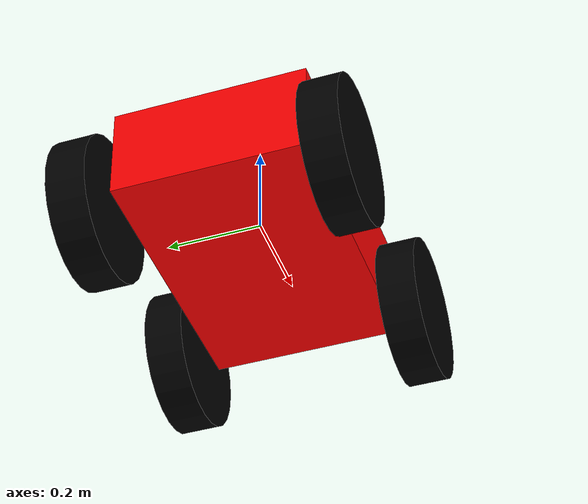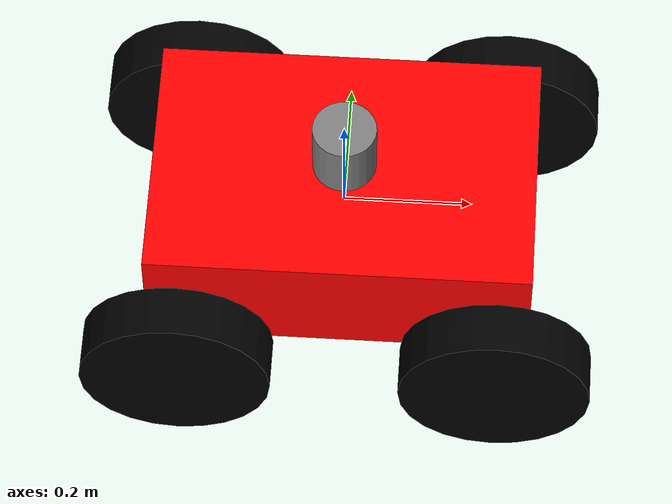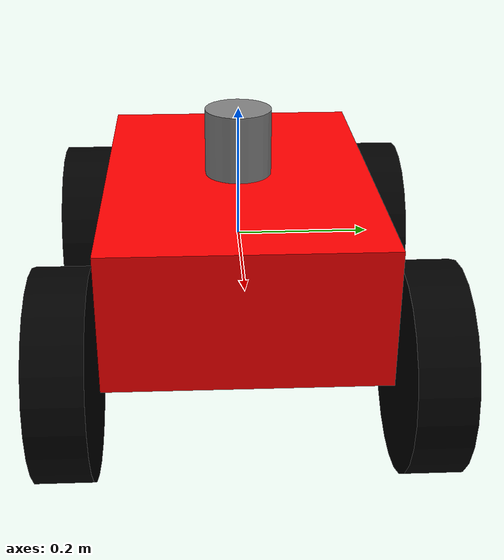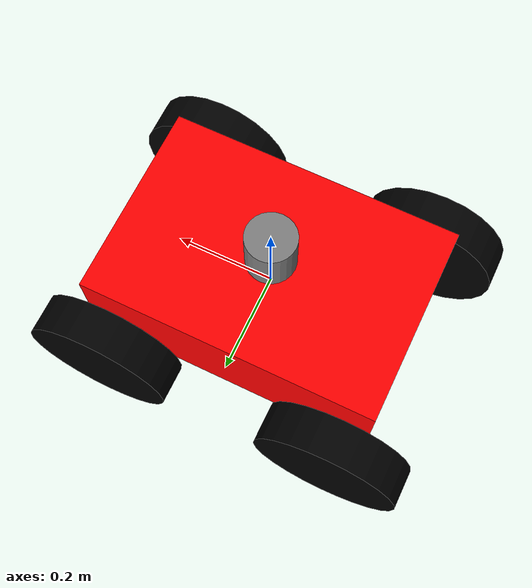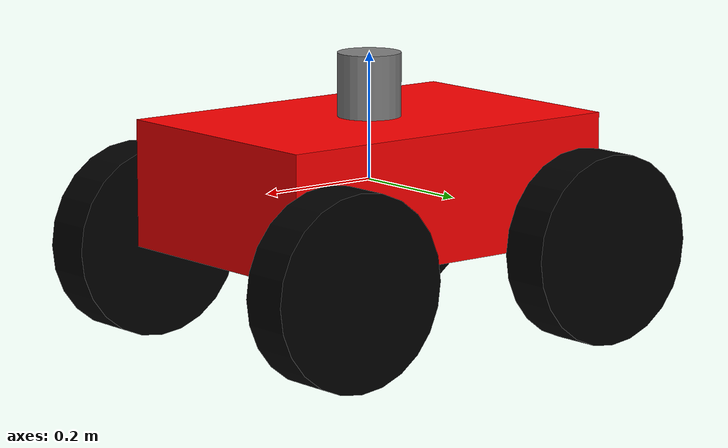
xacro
<?xml version="1.0"?>
<robot xmlns:xacro="http://ros.org/wiki/xacro" name="ae86_bot">

  <!-- ================= BASE LINK ================= -->
  <link name="base_link">
    <visual>
      <geometry>
        <box size="0.6 0.4 0.2"/> <!-- جسم الروبوت -->
      </geometry>
      <material name="red">
        <color rgba="1.0 0.0 0.0 1.0"/> <!-- أحمر كامل -->
      </material>
    </visual>
    <collision>
      <geometry>
        <box size="0.6 0.4 0.2"/>
      </geometry>
    </collision>
    <inertial>
      <mass value="10"/>
      <origin xyz="0 0 0"/>
      <inertia ixx="0.1" iyy="0.1" izz="0.1"
               ixy="0.0" ixz="0.0" iyz="0.0"/>
    </inertial>
  </link>

  <!-- ================= WHEELS ================= -->
  <xacro:macro name="wheel" params="name x y z">
    <link name="${name}">
      <visual>
        <geometry>
          <cylinder radius="0.15" length="0.08"/> <!-- عجلة كبيرة -->
        </geometry>
        <material name="black">
          <color rgba="0.0 0.0 0.0 1.0"/>
        </material>
      </visual>
      <collision>
        <geometry>
          <cylinder radius="0.15" length="0.08"/>
        </geometry>
      </collision>
      <inertial>
        <mass value="2"/>
        <inertia ixx="0.02" iyy="0.02" izz="0.02"
                 ixy="0.0" ixz="0.0" iyz="0.0"/>
      </inertial>
    </link>

    <!-- Joint -->
    <joint name="${name}_joint" type="continuous">
      <parent link="base_link"/>
      <child link="${name}"/>
      <origin xyz="${x} ${y} ${z}" rpy="1.5708 0 0"/> <!-- اتجاه طبيعي -->
      <axis xyz="0 1 0"/> <!-- تدور حوالين Y -->
    </joint>
  </xacro:macro>

  <!-- الأربع عجلات -->
  <xacro:wheel name="wheel_front_left"  x="0.25"  y="0.25"  z="-0.1"/>
  <xacro:wheel name="wheel_front_right" x="0.25"  y="-0.25" z="-0.1"/>
  <xacro:wheel name="wheel_back_left"   x="-0.25" y="0.25"  z="-0.1"/>
  <xacro:wheel name="wheel_back_right"  x="-0.25" y="-0.25" z="-0.1"/>

  <!-- ================= LIDAR ================= -->
  <link name="lidar_link">
    <visual>
      <geometry>
        <cylinder radius="0.05" length="0.1"/>
      </geometry>
      <material name="grey">
        <color rgba="0.5 0.5 0.5 1.0"/> <!-- رمادي فاتح لتمييز الليدار -->
      </material>
    </visual>
  </link>

  <joint name="lidar_joint" type="fixed">
    <parent link="base_link"/>
    <child link="lidar_link"/>
    <origin xyz="0 0 0.15" rpy="0 0 0"/> <!-- فوق جسم الروبوت -->
  </joint>

</robot>
